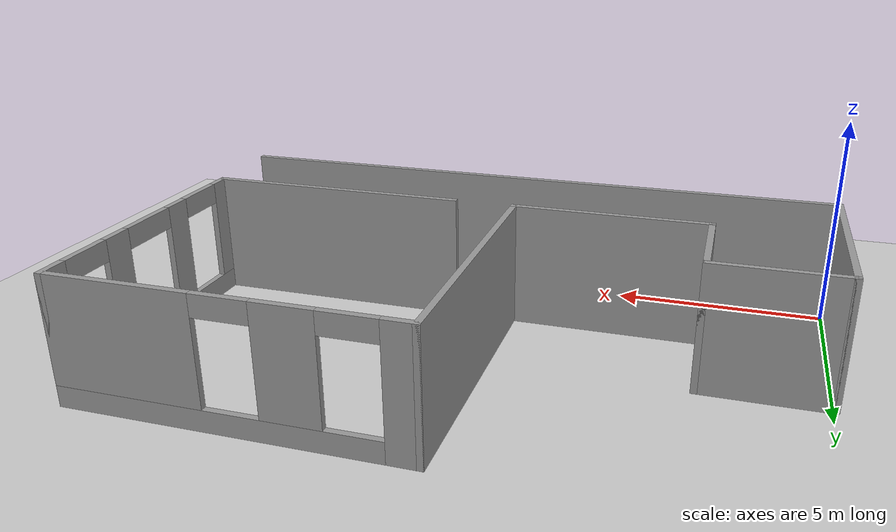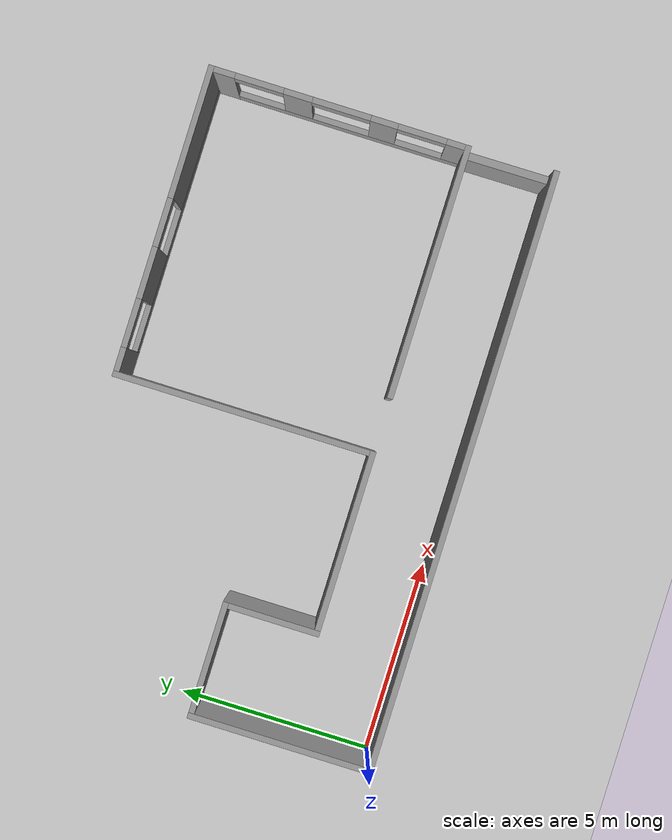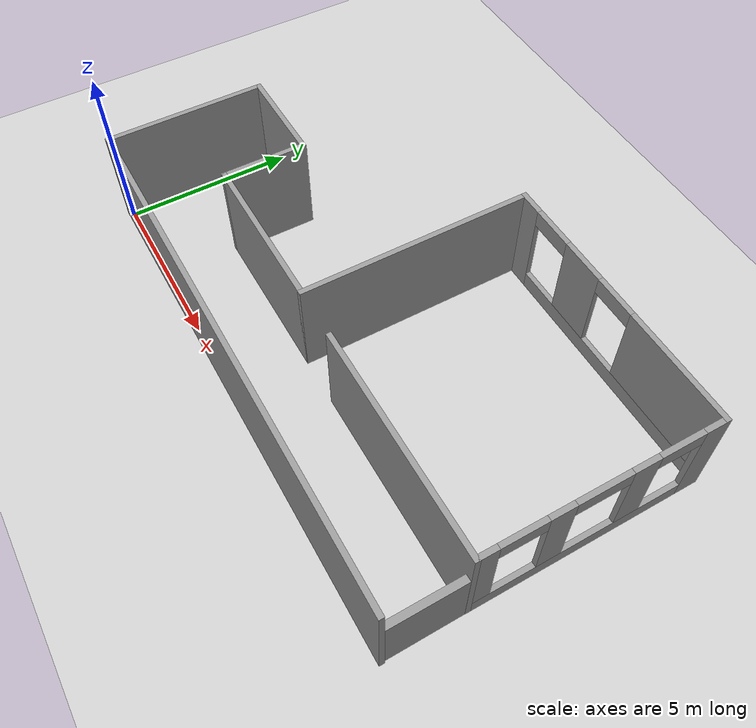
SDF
<sdf version="1.6">
 <world name="default">
  <light name="sun" type="directional">
   <pose>0 0 10 0 -0 0</pose>
   <diffuse>0.8 0.8 0.8 1</diffuse>
   <specular>0.1 0.1 0.1 1</specular>
   <attenuation>
    <range>1000</range>
    <constant>0.9</constant>
    <linear>0.01</linear>
    <quadratic>0.001</quadratic>
   </attenuation>
   <direction>-0.5 0.5 -1</direction>
  </light>
  <model name="ground_plane">
   <static>1</static>
   <link name="link">
    <collision name="collision">
     <geometry><plane><normal>0 0 1</normal><size>100 100</size></plane></geometry>
     <surface><friction><ode><mu>100</mu><mu2>50</mu2></ode></friction></surface>
    </collision>
    <visual name="visual">
     <cast_shadows>0</cast_shadows>
     <geometry><plane><normal>0 0 1</normal><size>100 100</size></plane></geometry>
     <material>
      <script><uri>file://media/materials/scripts/gazebo.material</uri><name>Gazebo/Grey</name></script>
     </material>
    </visual>
   </link>
  </model>
  <gravity>0 0 -9.8</gravity>
  <magnetic_field>6e-06 2.3e-05 -4.2e-05</magnetic_field>
  <atmosphere type="adiabatic"/>
  <physics name="default_physics" default="0" type="ode">
   <max_step_size>0.001</max_step_size>
   <real_time_factor>1</real_time_factor>
   <real_time_update_rate>1000</real_time_update_rate>
  </physics>
  <scene><ambient>0.4 0.4 0.4 1</ambient><background>0.7 0.7 0.7 1</background><shadows>1</shadows></scene>
  <spherical_coordinates>
   <surface_model>EARTH_WGS84</surface_model>
   <latitude_deg>0</latitude_deg>
   <longitude_deg>0</longitude_deg>
   <elevation>0</elevation>
   <heading_deg>0</heading_deg>
  </spherical_coordinates>
  <model name="Altorfer_v3_0">
   <pose>7.61556 4.36276 0 0 -0 0</pose>
   <link name="Door_0">
    <collision name="Door_0_Collision">
     <geometry><box><size>2.12758 0.2 2</size></box></geometry>
     <pose>0 0 1 0 -0 0</pose>
    </collision>
    <visual name="Door_0_Visual">
     <pose>0 0 1 0 -0 0</pose>
     <geometry><box><size>2.12758 0.2 2</size></box></geometry>
     <material>
      <script><uri>file://media/materials/scripts/gazebo.material</uri><name>Gazebo/Grey</name></script>
     </material>
    </visual>
    <pose>7.60175 -3.28966 0 0 0 -1.56509</pose>
   </link>
   <link name="Wall_10">
    <pose>7.625 1.125 0 0 0 -1.5708</pose>
    <visual name="Wall_10_Visual_0">
     <pose>-3.0264 0 1.5 0 -0 0</pose>
     <geometry><box><size>0.697196 0.15 3</size></box></geometry>
     <material>
      <script><uri>file://media/materials/scripts/gazebo.material</uri><name>Gazebo/Grey</name></script>
      <ambient>1 1 1 1</ambient>
     </material>
    </visual>
    <collision name="Wall_10_Collision_0">
     <geometry><box><size>0.697196 0.15 3</size></box></geometry>
     <pose>-3.0264 0 1.5 0 -0 0</pose>
    </collision>
    <visual name="Wall_10_Visual_1">
     <pose>0.348598 0 0.25 0 -0 0</pose>
     <geometry><box><size>6.0528 0.15 0.5</size></box></geometry>
     <material>
      <script><uri>file://media/materials/scripts/gazebo.material</uri><name>Gazebo/Grey</name></script>
      <ambient>1 1 1 1</ambient>
     </material>
    </visual>
    <collision name="Wall_10_Collision_1">
     <geometry><box><size>6.0528 0.15 0.5</size></box></geometry>
     <pose>0.348598 0 0.25 0 -0 0</pose>
    </collision>
    <visual name="Wall_10_Visual_2">
     <pose>-1.05934 0 1.75 0 -0 0</pose>
     <geometry><box><size>0.736925 0.15 2.5</size></box></geometry>
     <material>
      <script><uri>file://media/materials/scripts/gazebo.material</uri><name>Gazebo/Grey</name></script>
      <ambient>1 1 1 1</ambient>
     </material>
    </visual>
    <collision name="Wall_10_Collision_2">
     <geometry><box><size>0.736925 0.15 2.5</size></box></geometry>
     <pose>-1.05934 0 1.75 0 -0 0</pose>
    </collision>
    <visual name="Wall_10_Visual_3">
     <pose>1.15747 0 1.75 0 -0 0</pose>
     <geometry><box><size>0.696698 0.15 2.5</size></box></geometry>
     <material>
      <script><uri>file://media/materials/scripts/gazebo.material</uri><name>Gazebo/Grey</name></script>
      <ambient>1 1 1 1</ambient>
     </material>
    </visual>
    <collision name="Wall_10_Collision_3">
     <geometry><box><size>0.696698 0.15 2.5</size></box></geometry>
     <pose>1.15747 0 1.75 0 -0 0</pose>
    </collision>
    <visual name="Wall_10_Visual_4">
     <pose>3.06541 0 1.75 0 -0 0</pose>
     <geometry><box><size>0.619181 0.15 2.5</size></box></geometry>
     <material>
      <script><uri>file://media/materials/scripts/gazebo.material</uri><name>Gazebo/Grey</name></script>
      <ambient>1 1 1 1</ambient>
     </material>
    </visual>
    <collision name="Wall_10_Collision_4">
     <geometry><box><size>0.619181 0.15 2.5</size></box></geometry>
     <pose>3.06541 0 1.75 0 -0 0</pose>
    </collision>
    <visual name="Wall_10_Visual_5">
     <pose>-2.0528 0 2.75 0 -0 0</pose>
     <geometry><box><size>1.25 0.15 0.5</size></box></geometry>
     <material>
      <script><uri>file://media/materials/scripts/gazebo.material</uri><name>Gazebo/Grey</name></script>
      <ambient>1 1 1 1</ambient>
     </material>
    </visual>
    <collision name="Wall_10_Collision_5">
     <geometry><box><size>1.25 0.15 0.5</size></box></geometry>
     <pose>-2.0528 0 2.75 0 -0 0</pose>
    </collision>
    <visual name="Wall_10_Visual_6">
     <pose>0.059122 0 2.75 0 -0 0</pose>
     <geometry><box><size>1.5 0.15 0.5</size></box></geometry>
     <material>
      <script><uri>file://media/materials/scripts/gazebo.material</uri><name>Gazebo/Grey</name></script>
      <ambient>1 1 1 1</ambient>
     </material>
    </visual>
    <collision name="Wall_10_Collision_6">
     <geometry><box><size>1.5 0.15 0.5</size></box></geometry>
     <pose>0.059122 0 2.75 0 -0 0</pose>
    </collision>
    <visual name="Wall_10_Visual_7">
     <pose>2.13082 0 2.75 0 -0 0</pose>
     <geometry><box><size>1.25 0.15 0.5</size></box></geometry>
     <material>
      <script><uri>file://media/materials/scripts/gazebo.material</uri><name>Gazebo/Grey</name></script>
      <ambient>1 1 1 1</ambient>
     </material>
    </visual>
    <collision name="Wall_10_Collision_7">
     <geometry><box><size>1.25 0.15 0.5</size></box></geometry>
     <pose>2.13082 0 2.75 0 -0 0</pose>
    </collision>
   </link>
   <link name="Wall_11">
    <collision name="Wall_11_Collision">
     <geometry><box><size>6.5 0.15 3</size></box></geometry>
     <pose>0 0 1.5 0 -0 0</pose>
    </collision>
    <visual name="Wall_11_Visual">
     <pose>0 0 1.5 0 -0 0</pose>
     <geometry><box><size>6.5 0.15 3</size></box></geometry>
     <material>
      <script><uri>file://media/materials/scripts/gazebo.material</uri><name>Gazebo/Grey</name></script>
      <ambient>1 1 1 1</ambient>
     </material>
    </visual>
    <pose>4.45 -2.175 0 0 -0 3.14159</pose>
   </link>
   <link name="Wall_2">
    <collision name="Wall_2_Collision">
     <geometry><box><size>15.5 0.15 3</size></box></geometry>
     <pose>0 0 1.5 0 -0 0</pose>
    </collision>
    <visual name="Wall_2_Visual">
     <pose>0 0 1.5 0 -0 0</pose>
     <geometry><box><size>15.5 0.15 3</size></box></geometry>
     <material>
      <script><uri>file://media/materials/scripts/gazebo.material</uri><name>Gazebo/Grey</name></script>
      <ambient>1 1 1 1</ambient>
     </material>
    </visual>
    <pose>0 -4.425 0 0 -0 0</pose>
   </link>
   <link name="Wall_4">
    <collision name="Wall_4_Collision">
     <geometry><box><size>4.75 0.15 3</size></box></geometry>
     <pose>0 0 1.5 0 -0 0</pose>
    </collision>
    <visual name="Wall_4_Visual">
     <pose>0 0 1.5 0 -0 0</pose>
     <geometry><box><size>4.75 0.15 3</size></box></geometry>
     <material>
      <script><uri>file://media/materials/scripts/gazebo.material</uri><name>Gazebo/Grey</name></script>
      <ambient>1 1 1 1</ambient>
     </material>
    </visual>
    <pose>-7.675 -2.125 0 0 -0 1.5708</pose>
   </link>
   <link name="Wall_5">
    <collision name="Wall_5_Collision">
     <geometry><box><size>3 0.15 3</size></box></geometry>
     <pose>0 0 1.5 0 -0 0</pose>
    </collision>
    <visual name="Wall_5_Visual">
     <pose>0 0 1.5 0 -0 0</pose>
     <geometry><box><size>3 0.15 3</size></box></geometry>
     <material>
      <script><uri>file://media/materials/scripts/gazebo.material</uri><name>Gazebo/Grey</name></script>
      <ambient>1 1 1 1</ambient>
     </material>
    </visual>
    <pose>-6.25 0.175 0 0 -0 0</pose>
   </link>
   <link name="Wall_6">
    <collision name="Wall_6_Collision">
     <geometry><box><size>2.5 0.15 3</size></box></geometry>
     <pose>0 0 1.5 0 -0 0</pose>
    </collision>
    <visual name="Wall_6_Visual">
     <pose>0 0 1.5 0 -0 0</pose>
     <geometry><box><size>2.5 0.15 3</size></box></geometry>
     <material>
      <script><uri>file://media/materials/scripts/gazebo.material</uri><name>Gazebo/Grey</name></script>
      <ambient>1 1 1 1</ambient>
     </material>
    </visual>
    <pose>-4.825 -1 0 0 0 -1.5708</pose>
   </link>
   <link name="Wall_7">
    <collision name="Wall_7_Collision">
     <geometry><box><size>4.75 0.15 3</size></box></geometry>
     <pose>0 0 1.5 0 -0 0</pose>
    </collision>
    <visual name="Wall_7_Visual">
     <pose>0 0 1.5 0 -0 0</pose>
     <geometry><box><size>4.75 0.15 3</size></box></geometry>
     <material>
      <script><uri>file://media/materials/scripts/gazebo.material</uri><name>Gazebo/Grey</name></script>
      <ambient>1 1 1 1</ambient>
     </material>
    </visual>
    <pose>-2.525 -2.175 0 0 -0 0</pose>
   </link>
   <link name="Wall_8">
    <collision name="Wall_8_Collision">
     <geometry><box><size>6.75 0.15 3</size></box></geometry>
     <pose>0 0 1.5 0 -0 0</pose>
    </collision>
    <visual name="Wall_8_Visual">
     <pose>0 0 1.5 0 -0 0</pose>
     <geometry><box><size>6.75 0.15 3</size></box></geometry>
     <material>
      <script><uri>file://media/materials/scripts/gazebo.material</uri><name>Gazebo/Grey</name></script>
      <ambient>1 1 1 1</ambient>
     </material>
    </visual>
    <pose>-0.225 1.125 0 0 -0 1.5708</pose>
   </link>
   <link name="Wall_9">
    <pose>3.7 4.425 0 0 -0 0</pose>
    <visual name="Wall_9_Visual_0">
     <pose>-3.62027 0 1.5 0 -0 0</pose>
     <geometry><box><size>0.75946 0.15 3</size></box></geometry>
     <material>
      <script><uri>file://media/materials/scripts/gazebo.material</uri><name>Gazebo/Grey</name></script>
      <ambient>1 1 1 1</ambient>
     </material>
    </visual>
    <collision name="Wall_9_Collision_0">
     <geometry><box><size>0.75946 0.15 3</size></box></geometry>
     <pose>-3.62027 0 1.5 0 -0 0</pose>
    </collision>
    <visual name="Wall_9_Visual_1">
     <pose>0.37973 0 0.25 0 -0 0</pose>
     <geometry><box><size>7.24054 0.15 0.5</size></box></geometry>
     <material>
      <script><uri>file://media/materials/scripts/gazebo.material</uri><name>Gazebo/Grey</name></script>
      <ambient>1 1 1 1</ambient>
     </material>
    </visual>
    <collision name="Wall_9_Collision_1">
     <geometry><box><size>7.24054 0.15 0.5</size></box></geometry>
     <pose>0.37973 0 0.25 0 -0 0</pose>
    </collision>
    <visual name="Wall_9_Visual_2">
     <pose>-1.32335 0 1.75 0 -0 0</pose>
     <geometry><box><size>1.33437 0.15 2.5</size></box></geometry>
     <material>
      <script><uri>file://media/materials/scripts/gazebo.material</uri><name>Gazebo/Grey</name></script>
      <ambient>1 1 1 1</ambient>
     </material>
    </visual>
    <collision name="Wall_9_Collision_2">
     <geometry><box><size>1.33437 0.15 2.5</size></box></geometry>
     <pose>-1.32335 0 1.75 0 -0 0</pose>
    </collision>
    <visual name="Wall_9_Visual_3">
     <pose>2.29692 0 1.75 0 -0 0</pose>
     <geometry><box><size>3.40617 0.15 2.5</size></box></geometry>
     <material>
      <script><uri>file://media/materials/scripts/gazebo.material</uri><name>Gazebo/Grey</name></script>
      <ambient>1 1 1 1</ambient>
     </material>
    </visual>
    <collision name="Wall_9_Collision_3">
     <geometry><box><size>3.40617 0.15 2.5</size></box></geometry>
     <pose>2.29692 0 1.75 0 -0 0</pose>
    </collision>
    <visual name="Wall_9_Visual_4">
     <pose>-2.61554 0 2.75 0 -0 0</pose>
     <geometry><box><size>1.25 0.15 0.5</size></box></geometry>
     <material>
      <script><uri>file://media/materials/scripts/gazebo.material</uri><name>Gazebo/Grey</name></script>
      <ambient>1 1 1 1</ambient>
     </material>
    </visual>
    <collision name="Wall_9_Collision_4">
     <geometry><box><size>1.25 0.15 0.5</size></box></geometry>
     <pose>-2.61554 0 2.75 0 -0 0</pose>
    </collision>
    <visual name="Wall_9_Visual_5">
     <pose>-0.031169 0 2.75 0 -0 0</pose>
     <geometry><box><size>1.25 0.15 0.5</size></box></geometry>
     <material>
      <script><uri>file://media/materials/scripts/gazebo.material</uri><name>Gazebo/Grey</name></script>
      <ambient>1 1 1 1</ambient>
     </material>
    </visual>
    <collision name="Wall_9_Collision_5">
     <geometry><box><size>1.25 0.15 0.5</size></box></geometry>
     <pose>-0.031169 0 2.75 0 -0 0</pose>
    </collision>
   </link>
   <static>1</static>
  </model>
 </world>
</sdf>
